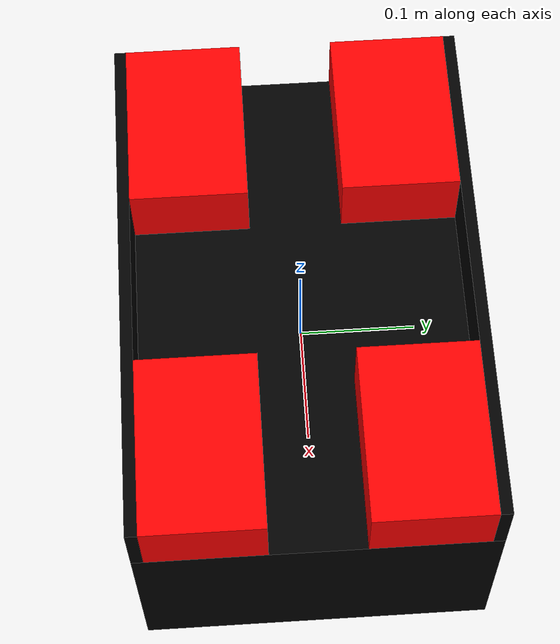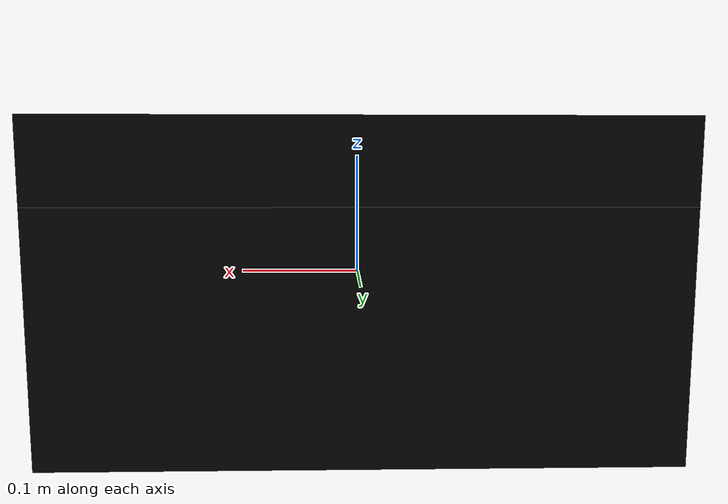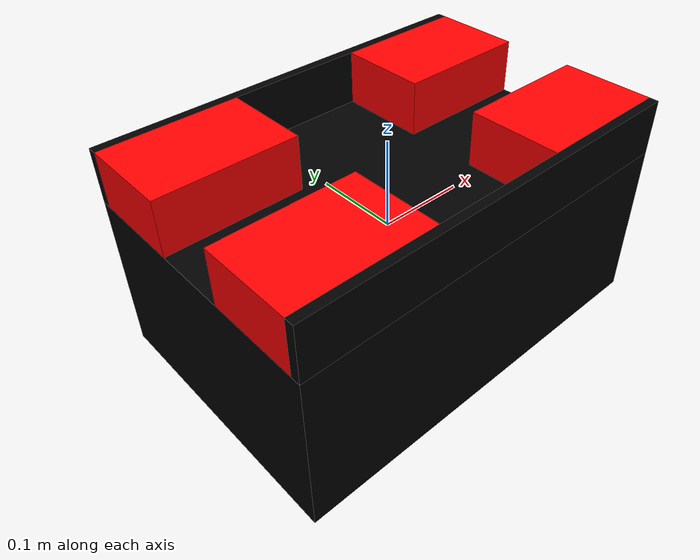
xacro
<?xml version="1.0"?>
<robot name="my_robot" xmlns:xacro="http://www.ros.org/wiki/xacro">

<!-- 主身体（黑色，根 link） -->
<link name="base_link">
  <visual>
    <geometry>
      <box size="0.45 0.30 0.18"/>
    </geometry>
    <origin xyz="0 0 -0.03" rpy="0 0 0"/>
    <material name="black_body">
      <color rgba="0.0 0.0 0.0 1.0"/>
    </material>
  </visual>
  <visual>
    <geometry>
      <box size="0.45 0.01 0.06"/>
    </geometry>
    <origin xyz="0 -0.145 0.09" rpy="0 0 0"/>
    <material name="black_body"/>
  </visual>
  <visual>
    <geometry>
      <box size="0.45 0.01 0.06"/>
    </geometry>
    <origin xyz="0 0.145 0.09" rpy="0 0 0"/>
    <material name="black_body"/>
  </visual>
</link>

<!-- 红色方块 1  焊死在 base_link -->
<link name="red_link_1">
  <visual>
    <geometry>
      <box size="0.15 0.10 0.06"/>
    </geometry>
    <material name="red_part_1">
      <color rgba="1.0 0.0 0.0 1.0"/>
    </material>
  </visual>
</link>
<joint name="joint_red_1" type="fixed">
  <parent link="base_link"/>
  <child link="red_link_1"/>
  <origin xyz="0.15 0.09 0.09" rpy="0 0 0"/>
</joint>

<!-- 红色方块 2  焊死在 base_link -->
<link name="red_link_2">
  <visual>
    <geometry>
      <box size="0.15 0.10 0.06"/>
    </geometry>
    <material name="red_part_2">
      <color rgba="1.0 0.0 0.0 1.0"/>
    </material>
  </visual>
</link>
<joint name="joint_red_2" type="fixed">
  <parent link="base_link"/>
  <child link="red_link_2"/>
  <origin xyz="0.15 -0.09 0.09" rpy="0 0 0"/>
</joint>

<!-- 红色方块 3  焊死在 base_link -->
<link name="red_link_3">
  <visual>
    <geometry>
      <box size="0.15 0.10 0.06"/>
    </geometry>
    <material name="red_part_3">
      <color rgba="1.0 0.0 0.0 1.0"/>
    </material>
  </visual>
</link>
<joint name="joint_red_3" type="fixed">
  <parent link="base_link"/>
  <child link="red_link_3"/>
  <origin xyz="-0.15 0.09 0.09" rpy="0 0 0"/>
</joint>

<!-- 红色方块 4  焊死在 base_link -->
<link name="red_link_4">
  <visual>
    <geometry>
      <box size="0.15 0.10 0.06"/>
    </geometry>
    <material name="red_part_4">
      <color rgba="1.0 0.0 0.0 1.0"/>
    </material>
  </visual>
</link>
<joint name="joint_red_4" type="fixed">
  <parent link="base_link"/>
  <child link="red_link_4"/>
  <origin xyz="-0.15 -0.09 0.09" rpy="0 0 0"/>
</joint>

</robot>
